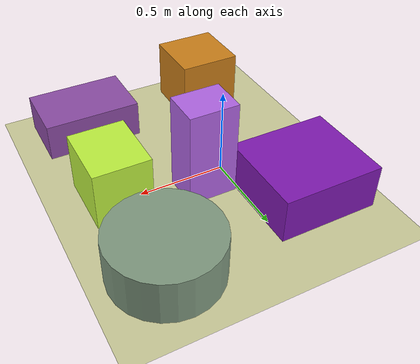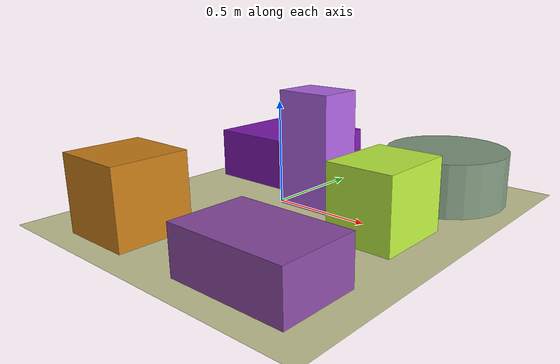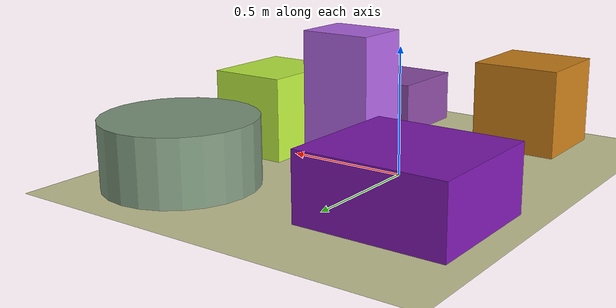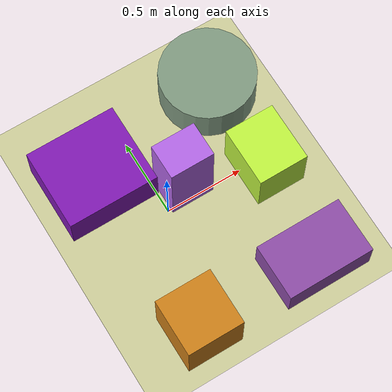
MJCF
<mujoco>
   <asset>
<texture type="skybox" builtin="gradient" rgb1="0.5 0.2 0.3" rgb2="0.6 0.5 0.9" width="256" height="256"/>
<texture name="checker_0" builtin="checker" type="2d" rgb1="0.1 0.1 0.9" rgb2="0.9 0.1 0.5" width="200" height="200"/>
<texture name="flat_1" builtin="flat" rgb1="0.8 0.5 0.1" rgb2="0.8 0.5 0.1"  width="200" height="200"/>
<texture name="gradient_2" builtin="gradient" rgb1="0.5 0.2 0.6" rgb2="0.6 0.4 0.7" width="200" height="200"/>
<texture name="checker_3" builtin="checker" type="2d" rgb1="0.5 0.9 0.2" rgb2="1.0 1.0 0.3" width="200" height="200"/>
<texture name="gradient_4" builtin="gradient" rgb1="0.9 0.4 0.8" rgb2="0.1 0.8 0.2" width="200" height="200"/>
<texture name="gradient_5" builtin="gradient" rgb1="1.0 0.1 0.9" rgb2="0.4 0.7 0.9" width="200" height="200"/><material name="checker_0_mat" reflectance="0" texrepeat="7 7" texture="checker_0" texuniform="false" />
<material name="flat_1_mat" reflectance="0" texture="flat_1" texuniform="true"/>
<material name="gradient_2_mat" reflectance="0" texture="gradient_2" texuniform="true"/>
<material name="checker_3_mat" reflectance="0" texrepeat="6 6" texture="checker_3" texuniform="false" />
<material name="gradient_4_mat" reflectance="0" texture="gradient_4" texuniform="true"/>
<material name="gradient_5_mat" reflectance="0" texture="gradient_5" texuniform="true"/>
   </asset>

   <worldbody>
      <light diffuse=".9 .9 .9" pos="0 0 3" dir="0 0 -1"/>
     <geom type="plane" size="1 1 0.1" rgba="0.8 0.8 0.6 1"/>
<geom type="box" pos="-0.28 0.39 0.13" size="0.29 0.26 0.13" material="checker_0_mat" />
<geom type="box" pos="-0.22 -0.71 0.18" size="0.18 0.18 0.18" material="flat_1_mat" />
<geom type="box" pos="0.56 -0.7 0.11" size="0.28 0.18 0.11" material="gradient_2_mat" />
<geom type="box" pos="0.64 -0.05 0.17" size="0.16 0.19 0.17" material="checker_3_mat" />
<geom type="cylinder" pos="0.61 0.55 0.13" size="0.3 0.13 0.13" material="gradient_4_mat" />
<geom type="box" pos="0.16 0.09 0.28" size="0.14 0.11 0.28" material="gradient_5_mat" /><camera euler="60 0 180" fovy="60" name="camera_a" pos="0 -1.5 1"></camera>   </worldbody>
</mujoco>
